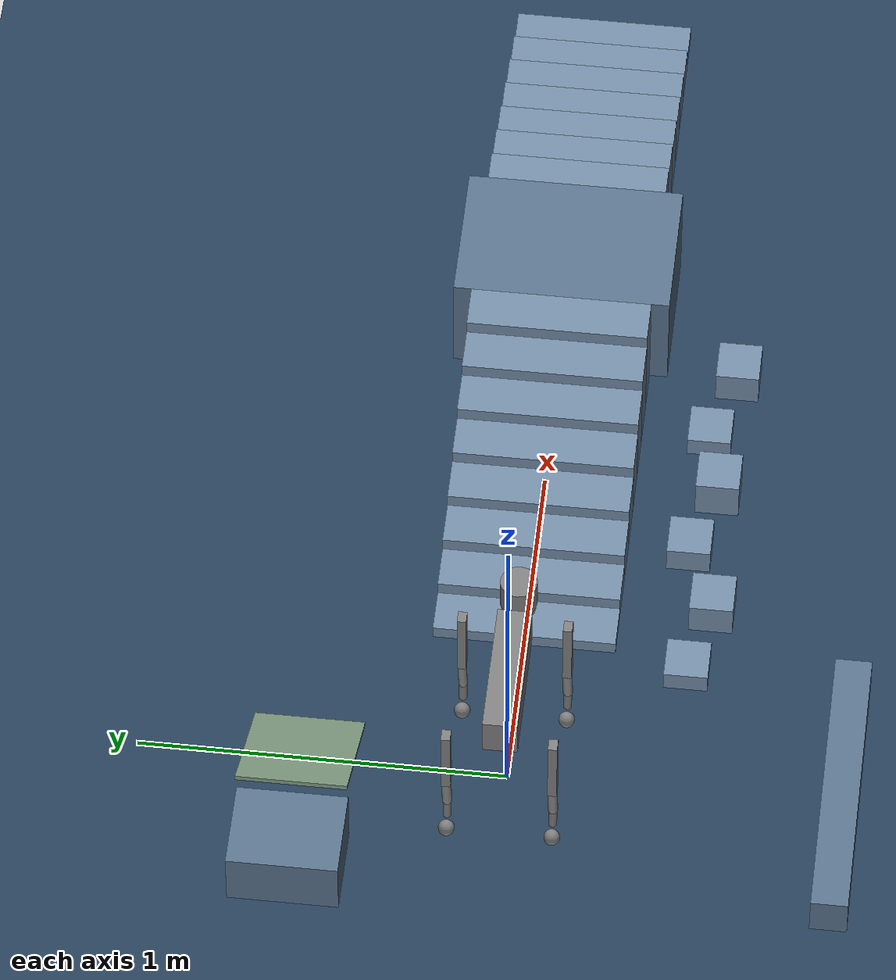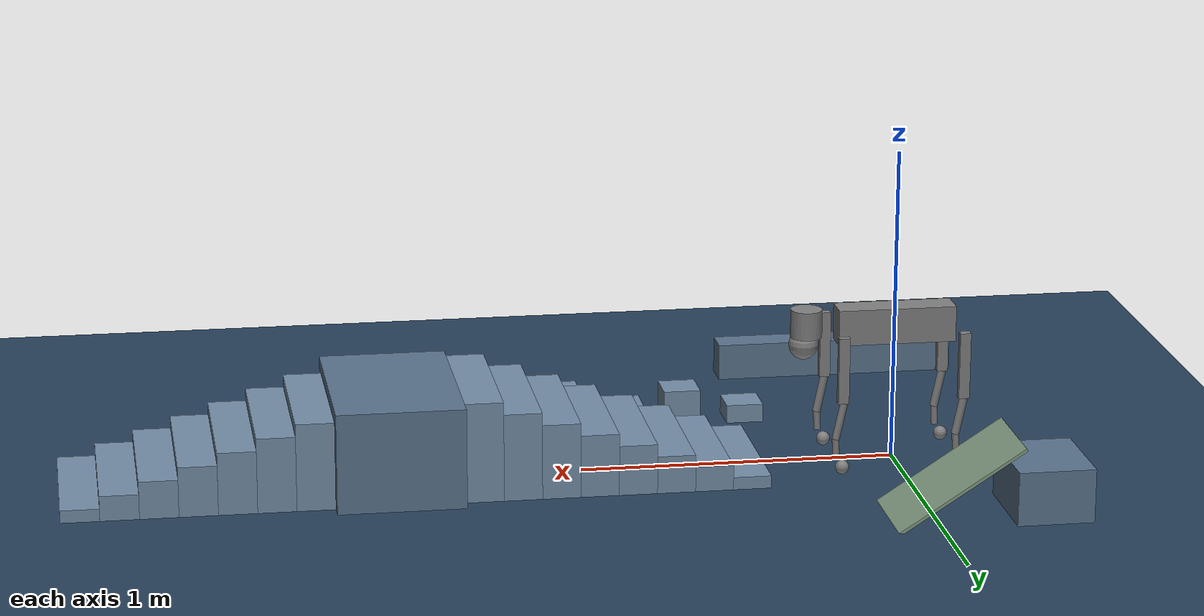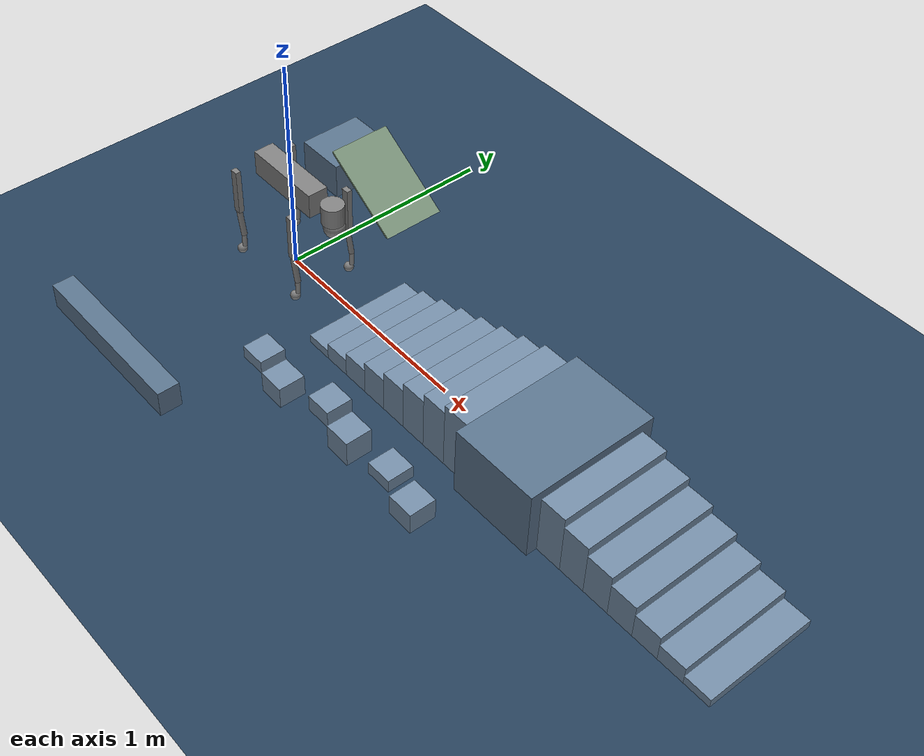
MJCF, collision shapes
<mujoco model="go2 stairs">
  <include file="go2.xml"/>

  <statistic center="1 0 0.2" extent="2"/>

  <visual>
    <headlight diffuse="0.6 0.6 0.6" ambient="0.3 0.3 0.3" specular="0 0 0"/>
    <rgba haze="0.15 0.25 0.35 1"/>
    <global azimuth="-130" elevation="-20"/>
  </visual>

  <asset>
    <texture type="skybox" builtin="gradient" rgb1="0.3 0.5 0.7" rgb2="0 0 0" width="512" height="3072"/>
    <texture type="2d" name="groundplane" builtin="checker" mark="edge" rgb1="0.2 0.3 0.4" rgb2="0.1 0.2 0.3"
      markrgb="0.8 0.8 0.8" width="300" height="300"/>
    <material name="groundplane" texture="groundplane" texuniform="true" texrepeat="5 5" reflectance="0.2"/>
    <material name="stair" rgba="0.45 0.55 0.65 1" reflectance="0.1"/>
    <material name="platform" rgba="0.35 0.45 0.55 1" reflectance="0.15"/>
    <material name="ramp" rgba="0.5 0.6 0.5 1" reflectance="0.1"/>
  </asset>

  <worldbody>
    <light pos="2 0 3" dir="0 0 -1" directional="true"/>
    <geom name="floor" size="0 0 0.05" type="plane" material="groundplane"/>

    <!-- ═══ Ascending stairs (forward +X) ═══ -->
    <!-- 8 steps: each 0.04m high, 0.12m deep, 0.5m wide -->
    <geom type="box" size="0.06 0.25 0.02"  pos="0.50 0 0.02"  material="stair"/>
    <geom type="box" size="0.06 0.25 0.04"  pos="0.62 0 0.04"  material="stair"/>
    <geom type="box" size="0.06 0.25 0.06"  pos="0.74 0 0.06"  material="stair"/>
    <geom type="box" size="0.06 0.25 0.08"  pos="0.86 0 0.08"  material="stair"/>
    <geom type="box" size="0.06 0.25 0.10"  pos="0.98 0 0.10"  material="stair"/>
    <geom type="box" size="0.06 0.25 0.12"  pos="1.10 0 0.12"  material="stair"/>
    <geom type="box" size="0.06 0.25 0.14"  pos="1.22 0 0.14"  material="stair"/>
    <geom type="box" size="0.06 0.25 0.16"  pos="1.34 0 0.16"  material="stair"/>

    <!-- Top platform -->
    <geom type="box" size="0.20 0.30 0.16" pos="1.60 0 0.16" material="platform"/>

    <!-- ═══ Descending stairs (continue +X) ═══ -->
    <geom type="box" size="0.06 0.25 0.14"  pos="1.86 0 0.14"  material="stair"/>
    <geom type="box" size="0.06 0.25 0.12"  pos="1.98 0 0.12"  material="stair"/>
    <geom type="box" size="0.06 0.25 0.10"  pos="2.10 0 0.10"  material="stair"/>
    <geom type="box" size="0.06 0.25 0.08"  pos="2.22 0 0.08"  material="stair"/>
    <geom type="box" size="0.06 0.25 0.06"  pos="2.34 0 0.06"  material="stair"/>
    <geom type="box" size="0.06 0.25 0.04"  pos="2.46 0 0.04"  material="stair"/>
    <geom type="box" size="0.06 0.25 0.02"  pos="2.58 0 0.02"  material="stair"/>

    <!-- ═══ Side ramp (left, +Y direction) ═══ -->
    <!-- Ramp up: inclined box -->
    <geom type="box" size="0.30 0.15 0.005" pos="0 0.55 0.08"
      euler="0 10 0" material="ramp"/>

    <!-- Ramp platform -->
    <geom type="box" size="0.12 0.15 0.085" pos="-0.35 0.55 0.085" material="platform"/>

    <!-- ═══ Stepping stones (right side, -Y) ═══ -->
    <geom type="box" size="0.06 0.06 0.03" pos="0.40 -0.45 0.03" material="stair"/>
    <geom type="box" size="0.06 0.06 0.05" pos="0.60 -0.50 0.05" material="stair"/>
    <geom type="box" size="0.06 0.06 0.04" pos="0.80 -0.42 0.04" material="stair"/>
    <geom type="box" size="0.06 0.06 0.06" pos="1.00 -0.48 0.06" material="stair"/>
    <geom type="box" size="0.06 0.06 0.03" pos="1.20 -0.44 0.03" material="stair"/>
    <geom type="box" size="0.06 0.06 0.05" pos="1.40 -0.50 0.05" material="stair"/>

    <!-- ═══ Narrow bridge ═══ -->
    <geom type="box" size="0.40 0.05 0.06" pos="0 -0.90 0.06" material="platform"/>
  </worldbody>
</mujoco>

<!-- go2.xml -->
<mujoco model="go2">
  <compiler angle="radian" meshdir="assets" autolimits="true"/>

  <option timestep="0.005" solver="PGS" gravity="0 0 -9.81"/>

  <default>
    <default class="go2">
      <geom friction="0.6" margin="0.001" condim="1"/>
      <joint axis="0 1 0" damping="0.1" armature="0.01" frictionloss="0.2"/>
      <motor ctrlrange="-23.7 23.7"/>
      <default class="abduction">
        <joint axis="1 0 0" range="-1.0472 1.0472"/>
      </default>
      <default class="hip">
        <default class="front_hip">
          <joint range="-1.5708 3.4907"/>
        </default>
        <default class="back_hip">
          <joint range="-0.5236 4.5379"/>
        </default>
      </default>
      <default class="knee">
        <joint range="-2.7227 -0.83776"/>
        <motor ctrlrange="-45.43 45.43"/>
      </default>
      <default class="visual">
        <geom type="mesh" contype="0" conaffinity="0" group="2"/>
      </default>
      <default class="collision">
        <geom group="3"/>
        <default class="foot">
          <geom size="0.022" pos="-0.002 0 -0.213" priority="1" solimp="0.015 1 0.022" condim="6"
            friction="2.0 0.005 0.0001"/>
        </default>
      </default>
    </default>
  </default>

  <asset>
    <material name="metal" rgba=".9 .95 .95 1"/>
    <material name="black" rgba="0 0 0 1"/>
    <material name="white" rgba="1 1 1 1"/>
    <material name="gray" rgba="0.671705 0.692426 0.774270 1"/>

    <mesh file="base_0.obj"/>
    <mesh file="base_1.obj"/>
    <mesh file="base_2.obj"/>
    <mesh file="base_3.obj"/>
    <mesh file="base_4.obj"/>
    <mesh file="hip_0.obj"/>
    <mesh file="hip_1.obj"/>
    <mesh file="thigh_0.obj"/>
    <mesh file="thigh_1.obj"/>
    <mesh file="thigh_mirror_0.obj"/>
    <mesh file="thigh_mirror_1.obj"/>
    <mesh file="calf_0.obj"/>
    <mesh file="calf_1.obj"/>
    <mesh file="calf_mirror_0.obj"/>
    <mesh file="calf_mirror_1.obj"/>
    <mesh file="foot.obj"/>

    <texture type="skybox" builtin="gradient" rgb1="0.3 0.5 0.7" rgb2="0 0 0" width="512" height="3072"/>
    <texture name="grid" type="2d" builtin="checker" width="512" height="512" rgb1=".1 .2 .3" rgb2=".2 .3 .4"/>
    <material name="groundplane" texture="grid" texuniform="true" texrepeat="1 1" reflectance="0.2"/>
  </asset>

  <worldbody>
    <light pos="0 0 1.5" dir="0 0 -1" directional="true"/>
    <geom name="floor" size="0 0 0.05" type="plane" material="groundplane" friction="2.0 0.005 0.0001"/>

    <body name="base" pos="0 0 0.445" childclass="go2">
      <inertial pos="0.021112 0 -0.005366" quat="-0.000543471 0.713435 -0.00173769 0.700719" mass="6.921"
        diaginertia="0.107027 0.0980771 0.0244531"/>
      <freejoint name="floating_base_joint"/>
      <geom mesh="base_0" material="black" class="visual"/>
      <geom mesh="base_1" material="black" class="visual"/>
      <geom mesh="base_2" material="black" class="visual"/>
      <geom mesh="base_3" material="white" class="visual"/>
      <geom mesh="base_4" material="gray" class="visual"/>
      <geom size="0.1881 0.04675 0.057" type="box" class="collision"/>
      <geom size="0.05 0.045" pos="0.285 0 0.01" type="cylinder" class="collision"/>
      <geom size="0.047" pos="0.293 0 -0.06" class="collision"/>
      <site name="imu" pos="-0.02557 0 0.04232"/>
      <body name="FL_hip" pos="0.1934 0.0465 0">
        <inertial pos="-0.0054 0.00194 -0.000105" quat="0.497014 0.499245 0.505462 0.498237" mass="0.678"
          diaginertia="0.00088403 0.000596003 0.000479967"/>
        <joint name="FL_hip_joint" class="abduction"/>
        <geom mesh="hip_0" material="metal" class="visual"/>
        <geom mesh="hip_1" material="gray" class="visual"/>
        <body name="FL_thigh" pos="0 0.0955 0">
          <inertial pos="-0.00374 -0.0223 -0.0327" quat="0.829533 0.0847635 -0.0200632 0.551623" mass="1.152"
            diaginertia="0.00594973 0.00584149 0.000878787"/>
          <joint name="FL_thigh_joint" class="front_hip"/>
          <geom mesh="thigh_0" material="metal" class="visual"/>
          <geom mesh="thigh_1" material="gray" class="visual"/>
          <geom size="0.1065 0.01225 0.017" pos="0 0 -0.1065" quat="0.707107 0 0.707107 0" type="box" class="collision"/>
          <body name="FL_calf" pos="0 0 -0.213">
            <inertial pos="0.00629595 -0.000622121 -0.141417" quat="0.710672 0.00154099 -0.00450087 0.703508"
              mass="0.241352" diaginertia="0.0014901 0.00146356 5.31397e-05"/>
            <joint name="FL_calf_joint" class="knee"/>
            <geom mesh="calf_0" material="gray" class="visual"/>
            <geom mesh="calf_1" material="black" class="visual"/>
            <geom size="0.012 0.06" pos="0.008 0 -0.06" quat="0.994493 0 -0.104807 0" type="cylinder" class="collision"/>
            <geom size="0.011 0.0325" pos="0.02 0 -0.148" quat="0.999688 0 0.0249974 0" type="cylinder" class="collision"/>
            <geom pos="0 0 -0.213" mesh="foot" class="visual" material="black"/>
            <geom name="FL" class="foot"/>
          </body>
        </body>
      </body>
      <body name="FR_hip" pos="0.1934 -0.0465 0">
        <inertial pos="-0.0054 -0.00194 -0.000105" quat="0.498237 0.505462 0.499245 0.497014" mass="0.678"
          diaginertia="0.00088403 0.000596003 0.000479967"/>
        <joint name="FR_hip_joint" class="abduction"/>
        <geom mesh="hip_0" material="metal" class="visual" quat="4.63268e-05 1 0 0"/>
        <geom mesh="hip_1" material="gray" class="visual" quat="4.63268e-05 1 0 0"/>
        <body name="FR_thigh" pos="0 -0.0955 0">
          <inertial pos="-0.00374 0.0223 -0.0327" quat="0.551623 -0.0200632 0.0847635 0.829533" mass="1.152"
            diaginertia="0.00594973 0.00584149 0.000878787"/>
          <joint name="FR_thigh_joint" class="front_hip"/>
          <geom mesh="thigh_mirror_0" material="metal" class="visual"/>
          <geom mesh="thigh_mirror_1" material="gray" class="visual"/>
          <geom size="0.1065 0.01225 0.017" pos="0 0 -0.1065" quat="0.707107 0 0.707107 0" type="box" class="collision"/>
          <body name="FR_calf" pos="0 0 -0.213">
            <inertial pos="0.00629595 0.000622121 -0.141417" quat="0.703508 -0.00450087 0.00154099 0.710672"
              mass="0.241352" diaginertia="0.0014901 0.00146356 5.31397e-05"/>
            <joint name="FR_calf_joint" class="knee"/>
            <geom mesh="calf_mirror_0" material="gray" class="visual"/>
            <geom mesh="calf_mirror_1" material="black" class="visual"/>
            <geom size="0.013 0.06" pos="0.01 0 -0.06" quat="0.995004 0 -0.0998334 0" type="cylinder" class="collision"/>
            <geom size="0.011 0.0325" pos="0.02 0 -0.148" quat="0.999688 0 0.0249974 0" type="cylinder" class="collision"/>
            <geom pos="0 0 -0.213" mesh="foot" class="visual" material="black"/>
            <geom name="FR" class="foot"/>
          </body>
        </body>
      </body>
      <body name="RL_hip" pos="-0.1934 0.0465 0">
        <inertial pos="0.0054 0.00194 -0.000105" quat="0.505462 0.498237 0.497014 0.499245" mass="0.678"
          diaginertia="0.00088403 0.000596003 0.000479967"/>
        <joint name="RL_hip_joint" class="abduction"/>
        <geom mesh="hip_0" material="metal" class="visual" quat="4.63268e-05 0 1 0"/>
        <geom mesh="hip_1" material="gray" class="visual" quat="4.63268e-05 0 1 0"/>
        <body name="RL_thigh" pos="0 0.0955 0">
          <inertial pos="-0.00374 -0.0223 -0.0327" quat="0.829533 0.0847635 -0.0200632 0.551623" mass="1.152"
            diaginertia="0.00594973 0.00584149 0.000878787"/>
          <joint name="RL_thigh_joint" class="back_hip"/>
          <geom mesh="thigh_0" material="metal" class="visual"/>
          <geom mesh="thigh_1" material="gray" class="visual"/>
          <geom size="0.1065 0.01225 0.017" pos="0 0 -0.1065" quat="0.707107 0 0.707107 0" type="box" class="collision"/>
          <body name="RL_calf" pos="0 0 -0.213">
            <inertial pos="0.00629595 -0.000622121 -0.141417" quat="0.710672 0.00154099 -0.00450087 0.703508"
              mass="0.241352" diaginertia="0.0014901 0.00146356 5.31397e-05"/>
            <joint name="RL_calf_joint" class="knee"/>
            <geom mesh="calf_0" material="gray" class="visual"/>
            <geom mesh="calf_1" material="black" class="visual"/>
            <geom size="0.013 0.06" pos="0.01 0 -0.06" quat="0.995004 0 -0.0998334 0" type="cylinder" class="collision"/>
            <geom size="0.011 0.0325" pos="0.02 0 -0.148" quat="0.999688 0 0.0249974 0" type="cylinder" class="collision"/>
            <geom pos="0 0 -0.213" mesh="foot" class="visual" material="black"/>
            <geom name="RL" class="foot"/>
          </body>
        </body>
      </body>
      <body name="RR_hip" pos="-0.1934 -0.0465 0">
        <inertial pos="0.0054 -0.00194 -0.000105" quat="0.499245 0.497014 0.498237 0.505462" mass="0.678"
          diaginertia="0.00088403 0.000596003 0.000479967"/>
        <joint name="RR_hip_joint" class="abduction"/>
        <geom mesh="hip_0" material="metal" class="visual" quat="2.14617e-09 4.63268e-05 4.63268e-05 -1"/>
        <geom mesh="hip_1" material="gray" class="visual" quat="2.14617e-09 4.63268e-05 4.63268e-05 -1"/>
        <body name="RR_thigh" pos="0 -0.0955 0">
          <inertial pos="-0.00374 0.0223 -0.0327" quat="0.551623 -0.0200632 0.0847635 0.829533" mass="1.152"
            diaginertia="0.00594973 0.00584149 0.000878787"/>
          <joint name="RR_thigh_joint" class="back_hip"/>
          <geom mesh="thigh_mirror_0" material="metal" class="visual"/>
          <geom mesh="thigh_mirror_1" material="gray" class="visual"/>
          <geom size="0.1065 0.01225 0.017" pos="0 0 -0.1065" quat="0.707107 0 0.707107 0" type="box" class="collision"/>
          <body name="RR_calf" pos="0 0 -0.213">
            <inertial pos="0.00629595 0.000622121 -0.141417" quat="0.703508 -0.00450087 0.00154099 0.710672"
              mass="0.241352" diaginertia="0.0014901 0.00146356 5.31397e-05"/>
            <joint name="RR_calf_joint" class="knee"/>
            <geom mesh="calf_mirror_0" material="gray" class="visual"/>
            <geom mesh="calf_mirror_1" material="black" class="visual"/>
            <geom size="0.013 0.06" pos="0.01 0 -0.06" quat="0.995004 0 -0.0998334 0" type="cylinder" class="collision"/>
            <geom size="0.011 0.0325" pos="0.02 0 -0.148" quat="0.999688 0 0.0249974 0" type="cylinder" class="collision"/>
            <geom pos="0 0 -0.213" mesh="foot" class="visual" material="black"/>
            <geom name="RR" class="foot"/>
          </body>
        </body>
      </body>
    </body>
  </worldbody>

  <actuator>
    <motor class="abduction" name="FL_hip" joint="FL_hip_joint"/>
    <motor class="hip" name="FL_thigh" joint="FL_thigh_joint"/>
    <motor class="knee" name="FL_calf" joint="FL_calf_joint"/>
    <motor class="abduction" name="FR_hip" joint="FR_hip_joint"/>
    <motor class="hip" name="FR_thigh" joint="FR_thigh_joint"/>
    <motor class="knee" name="FR_calf" joint="FR_calf_joint"/>
    <motor class="abduction" name="RL_hip" joint="RL_hip_joint"/>
    <motor class="hip" name="RL_thigh" joint="RL_thigh_joint"/>
    <motor class="knee" name="RL_calf" joint="RL_calf_joint"/>
    <motor class="abduction" name="RR_hip" joint="RR_hip_joint"/>
    <motor class="hip" name="RR_thigh" joint="RR_thigh_joint"/>
    <motor class="knee" name="RR_calf" joint="RR_calf_joint"/>
  </actuator>

  <keyframe>
    <key name="home" qpos="0 0 0.27 1 0 0 0 0 0.9 -1.8 0 0.9 -1.8 0 0.9 -1.8 0 0.9 -1.8"
      ctrl="0 0.9 -1.8 0 0.9 -1.8 0 0.9 -1.8 0 0.9 -1.8"/>
  </keyframe>
</mujoco>
